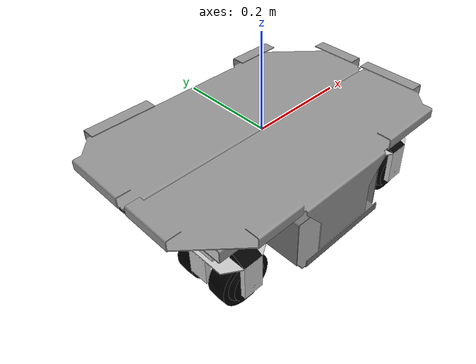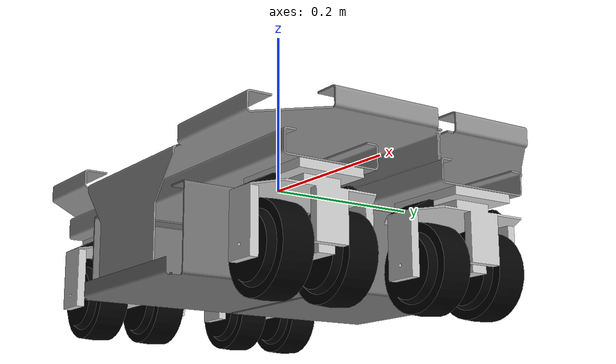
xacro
<?xml version="1.0" ?>
<robot name="robot" xmlns:xacro="http://www.ros.org/wiki/xacro">
    <xacro:include filename="$(find skratch_description)/urdf/skratch_base/skratch_top_base.urdf.xacro"/>
    <xacro:include filename="$(find skratch_description)/urdf/skratch_base/skratch_bottom_base.urdf.xacro"/>
    <xacro:include filename="$(find skratch_description)/urdf/skratch_base/skratch_wheel_support.urdf.xacro"/>
    <xacro:include filename="$(find skratch_description)/urdf/skratch_wheels/skratch_wheel_hub.urdf.xacro"/>
    <xacro:include filename="$(find skratch_description)/urdf/skratch_wheels/skratch_wheel.urdf.xacro"/>
    <xacro:include filename="$(find skratch_description)/urdf/skratch_macro.ros2_control.xacro" />
    <xacro:include filename="$(find skratch_description)/urdf/skratch_macro.imu_gazebo.xacro" />
    <xacro:include filename="$(find skratch_description)/urdf/skratch_macro.imu_gz.xacro" />

    <xacro:arg name="robot_name" default=""/>                   <!-- used by the launch system -->
    <xacro:arg name="sim_gazebo" default="false"/>              <!-- used by the launch system (gazebo "classic")-->
    <xacro:arg name="sim_gz" default="false"/>                  <!-- used by the launch system (latest version of gazebo) -->
    <xacro:arg name="controllers" default=""/>                  <!-- used by the launch system -->
    <xacro:property name="namespace" default="$(arg robot_name)"/>
    <xacro:property name="prefix" default="${namespace}_" />

    <link name="${prefix}base_link">
    </link>
    <xacro:skratch_top_base name="left_top_base"/>
    <joint name="base_joint" type="fixed">
        <origin xyz="0.0 -0.005 0.0" rpy="0.0 0.0 0.0"/>
        <parent link="${prefix}base_link"/>
        <child link="left_top_base"/>
    </joint>

    <xacro:skratch_top_base name="right_top_base"/>
    <joint name="frame_joint" type="fixed">
        <origin xyz="0.0 0.003 0.0" rpy="0.0 0.0 3.14"/>
        <parent link="${prefix}base_link"/>
        <child link="right_top_base"/>
    </joint>

    <xacro:skratch_bottom_base name="left_bottom_base"/>
    <joint name="left_bottom_base_joint" type="fixed">
        <origin xyz="0.0 -0.099 -0.138" rpy="3.14 0.0 0.0"/>
        <parent link="left_top_base"/>
        <child link="left_bottom_base"/>
    </joint>

    <xacro:skratch_bottom_base name="right_bottom_base"/>
    <joint name="right_bottom_base_joint" type="fixed">
        <origin xyz="0.0 -0.099 -0.138" rpy="3.14 0.0 0.0"/>
        <parent link="right_top_base"/>
        <child link="right_bottom_base"/>
    </joint>

    <xacro:skratch_wheel_support name="left_wheel_support"/>
    <joint name="left_wheel_support_joint" type="fixed">
        <origin xyz="0.0 0.0 -0.1022" rpy="0.0 0.0 0.0"/>
        <parent link="left_bottom_base"/>
        <child link="left_wheel_support"/>
    </joint>

    <xacro:skratch_wheel_support name="right_wheel_support"/>
    <joint name="right_wheel_support_joint" type="fixed">
        <origin xyz="0.0 0.0 -0.1022" rpy="0.0 0.0 0.0"/>
        <parent link="right_bottom_base"/>
        <child link="right_wheel_support"/>
    </joint>

    <xacro:skratch_wheel_hub name="front_left_wheel_hub"/>
    <joint name="front_left_wheel_hub_joint" type="continuous">
        <origin xyz="0.2 0.0 0.085" rpy="3.14 0.0 0.0"/>
        <parent link="left_wheel_support"/>
        <child link="front_left_wheel_hub"/>
        <axis xyz="0.0 0.0 1.0"/>
    </joint>

    <xacro:if value="$(arg sim_gazebo)">
        <xacro:macro_imu_gazebo name="front_left_wheel_imu" parent_link="front_left_wheel_hub" namespace="${namespace}" />
    </xacro:if>
    <xacro:if value="$(arg sim_gz)">
        <xacro:macro_imu_gz name="front_left_wheel_imu" parent_link="front_left_wheel_hub" namespace="${namespace}" />
    </xacro:if>

    <xacro:skratch_wheel name="front_left_wheel_one"/>
    <joint name="front_left_wheel_one_joint" type="continuous">
        <origin xyz="0.0 0.04 0.0" rpy="0.0 0.0 0.0"/>
        <parent link="front_left_wheel_hub"/>
        <child link="front_left_wheel_one"/>
        <axis xyz="0.0 1.0 0.0"/>
    </joint>

    <xacro:skratch_wheel name="front_left_wheel_two"/>
    <joint name="front_left_wheel_two_joint" type="continuous">
        <origin xyz="0.0 -0.04 0.0" rpy="0.0 0.0 0.0"/>
        <parent link="front_left_wheel_hub"/>
        <child link="front_left_wheel_two"/>
        <axis xyz="0.0 1.0 0.0"/>
    </joint>

    <xacro:skratch_wheel_hub name="front_right_wheel_hub"/>
    <joint name="front_right_wheel_hub_joint" type="continuous">
        <origin xyz="-0.2 0.0 0.085" rpy="3.14 0.0 0.0"/>
        <parent link="right_wheel_support"/>
        <child link="front_right_wheel_hub"/>
        <axis xyz="0.0 0.0 1.0"/>
    </joint>

    <xacro:if value="$(arg sim_gazebo)">
        <xacro:macro_imu_gazebo name="front_right_wheel_imu" parent_link="front_right_wheel_hub" namespace="${namespace}" />
    </xacro:if>
    <xacro:if value="$(arg sim_gz)">
        <xacro:macro_imu_gz name="front_right_wheel_imu" parent_link="front_right_wheel_hub" namespace="${namespace}" />
    </xacro:if>

    <xacro:skratch_wheel name="front_right_wheel_one"/>
    <joint name="front_right_wheel_one_joint" type="continuous">
        <origin xyz="0.0 0.04 0.0" rpy="0.0 0.0 0.0"/>
        <parent link="front_right_wheel_hub"/>
        <child link="front_right_wheel_one"/>
        <axis xyz="0.0 1.0 0.0"/>
    </joint>

    <xacro:skratch_wheel name="front_right_wheel_two"/>
    <joint name="front_right_wheel_two_joint" type="continuous">
        <origin xyz="0.0 -0.04 0.0" rpy="0.0 0.0 0.0"/>
        <parent link="front_right_wheel_hub"/>
        <child link="front_right_wheel_two"/>
        <axis xyz="0.0 1.0 0.0"/>
    </joint>

    <xacro:skratch_wheel_hub name="rear_left_wheel_hub"/>
    <joint name="rear_left_wheel_hub_joint" type="continuous">
        <origin xyz="-0.2 0.0 0.085" rpy="3.14 0.0 0.0"/>
        <parent link="left_wheel_support"/>
        <child link="rear_left_wheel_hub"/>
        <axis xyz="0.0 0.0 1.0"/>
    </joint>

    <xacro:if value="$(arg sim_gazebo)">
        <xacro:macro_imu_gazebo name="rear_left_wheel_imu" parent_link="rear_left_wheel_hub" namespace="${namespace}" />
    </xacro:if>
    <xacro:if value="$(arg sim_gz)">
        <xacro:macro_imu_gz name="rear_left_wheel_imu" parent_link="rear_left_wheel_hub" namespace="${namespace}" />
    </xacro:if>

    <xacro:skratch_wheel name="rear_left_wheel_one"/>
    <joint name="rear_left_wheel_one_joint" type="continuous">
        <origin xyz="0.0 0.04 0.0" rpy="0.0 0.0 0.0"/>
        <parent link="rear_left_wheel_hub"/>
        <child link="rear_left_wheel_one"/>
        <axis xyz="0.0 1.0 0.0"/>
    </joint>

    <xacro:skratch_wheel name="rear_left_wheel_two"/>
    <joint name="rear_left_wheel_two_joint" type="continuous">
        <origin xyz="0.0 -0.04 0.0" rpy="0.0 0.0 0.0"/>
        <parent link="rear_left_wheel_hub"/>
        <child link="rear_left_wheel_two"/>
        <axis xyz="0.0 1.0 0.0"/>
    </joint>

    <xacro:skratch_wheel_hub name="rear_right_wheel_hub"/>
    <joint name="rear_right_wheel_hub_joint" type="continuous">
        <origin xyz="0.2 0.0 0.085" rpy="3.14 0.0 0.0"/>
        <parent link="right_wheel_support"/>
        <child link="rear_right_wheel_hub"/>
        <axis xyz="0.0 0.0 1.0"/>
    </joint>

    <xacro:if value="$(arg sim_gazebo)">
        <xacro:macro_imu_gazebo name="rear_right_wheel_imu" parent_link="rear_right_wheel_hub" namespace="${namespace}" />
    </xacro:if>
    <xacro:if value="$(arg sim_gz)">
        <xacro:macro_imu_gz name="rear_right_wheel_imu" parent_link="rear_right_wheel_hub" namespace="${namespace}" />
    </xacro:if>

    <xacro:skratch_wheel name="rear_right_wheel_one"/>
    <joint name="rear_right_wheel_one_joint" type="continuous">
        <origin xyz="0.0 0.04 0.0" rpy="0.0 0.0 0.0"/>
        <parent link="rear_right_wheel_hub"/>
        <child link="rear_right_wheel_one"/>
        <axis xyz="0.0 1.0 0.0"/>
    </joint>

    <xacro:skratch_wheel name="rear_right_wheel_two"/>
    <joint name="rear_right_wheel_two_joint" type="continuous">
        <origin xyz="0.0 -0.04 0.0" rpy="0.0 0.0 0.0"/>
        <parent link="rear_right_wheel_hub"/>
        <child link="rear_right_wheel_two"/>
        <axis xyz="0.0 1.0 0.0"/>
    </joint>

  <xacro:if value="$(arg sim_gazebo)">
    <xacro:macro_ros2_control name="GazeboSystem" plugin="gazebo_ros2_control/GazeboSystem"/>
    <gazebo>
      <plugin filename="libgazebo_ros2_control.so" name="gazebo_ros2_control">
        <parameters>$(arg controllers)</parameters>
        <ros>
          <namespace>${namespace}</namespace>
          </ros>
        </plugin>
      </gazebo>
    </xacro:if>

  <xacro:if value="$(arg sim_gz)">
    <xacro:macro_ros2_control name="IgnitionSystem" plugin="ign_ros2_control/IgnitionSystem"/>
    <gazebo>
      <plugin filename="ign_ros2_control-system" name="ign_ros2_control::IgnitionROS2ControlPlugin">
        <parameters>$(arg controllers)</parameters>
        <ros>
          <namespace>${namespace}</namespace>
          </ros>
        </plugin>
      </gazebo>
    </xacro:if>

</robot>

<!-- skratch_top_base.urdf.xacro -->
<robot name="skratch_top_base" xmlns:xacro="http://www.ros.org/wiki/xacro">
    <xacro:macro name="skratch_top_base" params="name">
        <link name="${name}">
            <inertial>
                <origin xyz="0.008830585928268448 -0.10175187776552877 -0.005196988044441631" rpy="0.0 0.0 0.0" />
                <mass value="2.7842157300947834" />
                <inertia ixx="0.015643927085716977" iyy="0.08608421509026748" izz="0.09817349128863186" ixy="0.001427185879496092" iyz="-0.001352783316075302" ixz="-0.0003783794522692577" />
            </inertial>
            <visual>
                <origin xyz="0.0 0.0 0.0" rpy="0.0 0.0 0.0" />
                <geometry>
                    <mesh filename="file://$(find skratch_description)/meshes/skratch_base/skratch_top_base.dae" scale="1 1 1"/>
                </geometry>
            </visual>
            <collision>
                <origin xyz="0.0 0.0 0.0" rpy="0.0 0.0 0.0" />
                <geometry>
                    <mesh filename="file://$(find skratch_description)/meshes/skratch_base/skratch_top_base.dae" scale="1 1 1"/>
                </geometry>
            </collision>
        </link>
    </xacro:macro>
</robot>

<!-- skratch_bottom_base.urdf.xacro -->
<robot name="skratch_bottom_base" xmlns:xacro="http://www.ros.org/wiki/xacro">
    <xacro:macro name="skratch_bottom_base" params="name">
        <link name="${name}">
            <inertial>
                <origin xyz="-7.988456828410611e-16 0.012838329911753484 -0.10681866837070077" rpy="0.0 -0.0 0.0" />
                <mass value="1.3183969682231969" />
                <inertia ixx="0.006262100592744672" iyy="0.01495357244841754" izz="0.010505769120862037" ixy="-3.366486926680768e-17" iyz="0.0006352560561664316" ixz="-2.929797944107108e-16" />
            </inertial>
            <visual>
                <origin xyz="0.0 0.0 0.0" rpy="0.0 0.0 0.0" />
                <geometry>
                    <mesh filename="file://$(find skratch_description)/meshes/skratch_base/skratch_bottom_base.dae" scale="1 1 1"/>
                </geometry>
            </visual>
            <collision>
                <origin xyz="0.0 0.0 0.0" rpy="0.0 0.0 0.0" />
                <geometry>
                    <mesh filename="file://$(find skratch_description)/meshes/skratch_base/skratch_bottom_base.dae" scale="1 1 1"/>
                </geometry>
            </collision>
        </link>
    </xacro:macro>
</robot>

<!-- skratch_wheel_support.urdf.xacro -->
<robot name="skratch_wheel_support" xmlns:xacro="http://www.ros.org/wiki/xacro">
    <xacro:macro name="skratch_wheel_support" params="name">
        <link name="${name}">
            <inertial>
                <origin xyz="-0.10000000328941594 1.7763568394002505e-15 -0.008058261738983807" rpy="0.0 -0.0 0.0" />
                <mass value="1.5123929481649574" />
                <inertia ixx="0.00302838495464337" iyy="0.03229985650902184" izz="0.03501153037991672" ixy="-1.0278236595162582e-16" iyz="-5.204170427930421e-18" ixz="-1.940721888749053e-17" />
            </inertial>
            <visual>
                <origin xyz="0.0 0.0 0.0" rpy="0.0 0.0 0.0" />
                <geometry>
                    <mesh filename="file://$(find skratch_description)/meshes/skratch_base/skratch_wheel_support.dae" scale="1 1 1"/>
                </geometry>
            </visual>
            <collision>
                <origin xyz="0.0 0.0 0.0" rpy="0.0 0.0 0.0" />
                <geometry>
                    <mesh filename="file://$(find skratch_description)/meshes/skratch_base/skratch_wheel_support.dae" scale="1 1 1"/>
                </geometry>
            </collision>
        </link>
    </xacro:macro>
</robot>

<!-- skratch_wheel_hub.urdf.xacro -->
<robot name="skratch_wheel_hub" xmlns:xacro="http://www.ros.org/wiki/xacro">
    <xacro:macro name="skratch_wheel_hub" params="name">
        <link name="${name}">
            <inertial>
                <origin xyz="0.0 0.0 0.0" rpy="0.0 -0.0 0.0" />
                <mass value="10" />
                <inertia ixx="0.0904817" iyy="0.0904817" izz="0.0904817" ixy="0.0" iyz="0.0" ixz="0.0" />
            </inertial>
            <visual>
                <origin xyz="0.0 0.0 0.0" rpy="0.0 0.0 0.0" />
                <geometry>
                    <mesh filename="file://$(find skratch_description)/meshes/skratch_wheel/kelo_drive_base.dae" scale="1 1 1"/>
                </geometry>
            </visual>
            <collision>
                <origin xyz="0.0 0.0 0.0" rpy="0.0 0.0 0.0" />
                <geometry>
                    <mesh filename="file://$(find skratch_description)/meshes/skratch_wheel/kelo_drive_base.dae" scale="1 1 1"/>
                </geometry>
            </collision>
        </link>
    </xacro:macro>
</robot>

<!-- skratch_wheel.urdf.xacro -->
<robot name="skratch_wheel" xmlns:xacro="http://www.ros.org/wiki/xacro">
    <xacro:macro name="skratch_wheel" params="name">
        <link name="${name}">
            <inertial>
                <origin xyz="0.0 0.0 0.0" rpy="0.0 -0.0 0.0" />
                <mass value="10" />
                <inertia ixx="0.0904817" iyy="0.0904817" izz="0.0904817" ixy="0.0" iyz="0.0" ixz="0.0" />
            </inertial>
            <visual>
                <origin xyz="0.0 0.0 0.0" rpy="0.0 0.0 0.0" />
                <geometry>
                    <mesh filename="file://$(find skratch_description)/meshes/skratch_wheel/kelo_drive_wheel.dae" scale="1 1 1"/>
                </geometry>
            </visual>
            <collision>
                <origin xyz="0.0 0.0 0.0" rpy="0.0 0.0 0.0" />
                <geometry>
                    <mesh filename="file://$(find skratch_description)/meshes/skratch_wheel/kelo_drive_wheel.dae" scale="1 1 1"/>
                </geometry>
            </collision>
        </link>
    </xacro:macro>
</robot>
